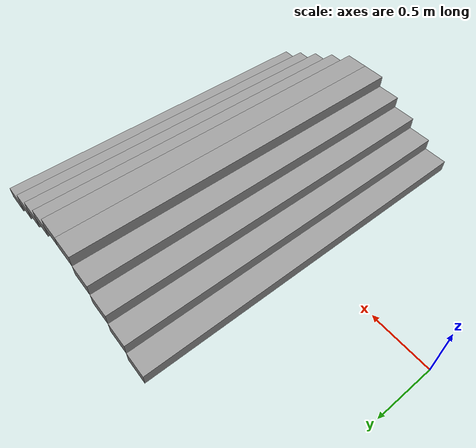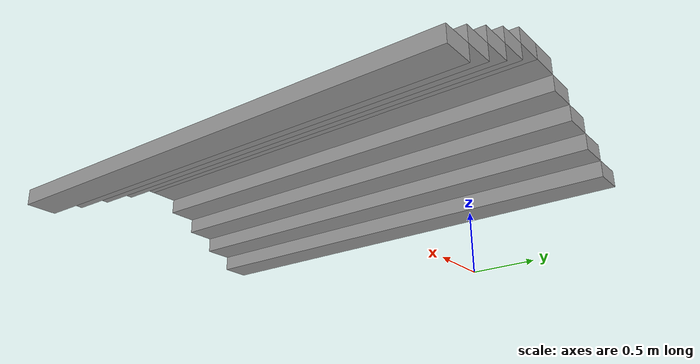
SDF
<?xml version='1.0'?>
<sdf version='1.7'>
  <model name='stairs'>
    <link name='Stairs_2'>
      <self_collide>0</self_collide>
      <enable_wind>0</enable_wind>
      <kinematic>0</kinematic>
      <pose>0 0 0 0 -0 0</pose>
      <visual name='Stairs_2_Visual_3'>
        <pose>1.775 -0 0.35 0 -0 1.5708</pose>
        <geometry>
          <box>
            <size>3 0.2 0.1</size>
          </box>
        </geometry>
        <material>
          <script>
            <uri>file://media/materials/scripts/gazebo.material</uri>
            <name>Gazebo/Grey</name>
          </script>
          <ambient>1 1 1 1</ambient>
          <shader type='pixel'/>
        </material>
        <meta>
          <layer>0</layer>
        </meta>
        <transparency>0</transparency>
        <cast_shadows>1</cast_shadows>
      </visual>
      <visual name='Stairs_2_Visual_0'>
        <pose>1.175 -0 0.05 0 -0 1.5708</pose>
        <geometry>
          <box>
            <size>3 0.2 0.1</size>
          </box>
        </geometry>
        <material>
          <script>
            <uri>file://media/materials/scripts/gazebo.material</uri>
            <name>Gazebo/Grey</name>
          </script>
          <ambient>1 1 1 1</ambient>
          <shader type='pixel'/>
        </material>
        <meta>
          <layer>0</layer>
        </meta>
        <transparency>0</transparency>
        <cast_shadows>1</cast_shadows>
      </visual>
      <visual name='Stairs_2_Visual_4'>
        <pose>1.975 0 0.45 0 -0 1.5708</pose>
        <geometry>
          <box>
            <size>3 0.2 0.1</size>
          </box>
        </geometry>
        <material>
          <script>
            <uri>file://media/materials/scripts/gazebo.material</uri>
            <name>Gazebo/Grey</name>
          </script>
          <ambient>1 1 1 1</ambient>
          <shader type='pixel'/>
        </material>
        <meta>
          <layer>0</layer>
        </meta>
        <transparency>0</transparency>
        <cast_shadows>1</cast_shadows>
      </visual>
      <visual name='Stairs_2_Visual_1'>
        <pose>1.375 -0 0.15 0 -0 1.5708</pose>
        <geometry>
          <box>
            <size>3 0.2 0.1</size>
          </box>
        </geometry>
        <material>
          <script>
            <uri>file://media/materials/scripts/gazebo.material</uri>
            <name>Gazebo/Grey</name>
          </script>
          <ambient>1 1 1 1</ambient>
          <shader type='pixel'/>
        </material>
        <meta>
          <layer>0</layer>
        </meta>
        <transparency>0</transparency>
        <cast_shadows>1</cast_shadows>
      </visual>
      <visual name='Stairs_2_Visual_2'>
        <pose>1.575 -0 0.25 0 -0 1.5708</pose>
        <geometry>
          <box>
            <size>3 0.2 0.1</size>
          </box>
        </geometry>
        <material>
          <script>
            <uri>file://media/materials/scripts/gazebo.material</uri>
            <name>Gazebo/Grey</name>
          </script>
          <ambient>1 1 1 1</ambient>
          <shader type='pixel'/>
        </material>
        <meta>
          <layer>0</layer>
        </meta>
        <transparency>0</transparency>
        <cast_shadows>1</cast_shadows>
      </visual>
      <collision name='Stairs_2_Collision_3'>
        <laser_retro>0</laser_retro>
        <max_contacts>10</max_contacts>
        <pose>1.775 0 0.35 0 -0 1.5708</pose>
        <geometry>
          <box>
            <size>3 0.2 0.1</size>
          </box>
        </geometry>
        <surface>
          <friction>
            <ode>
              <mu>1</mu>
              <mu2>1</mu2>
              <fdir1>0 0 0</fdir1>
              <slip1>0</slip1>
              <slip2>0</slip2>
            </ode>
            <torsional>
              <coefficient>1</coefficient>
              <patch_radius>0</patch_radius>
              <surface_radius>0</surface_radius>
              <use_patch_radius>1</use_patch_radius>
              <ode>
                <slip>0</slip>
              </ode>
            </torsional>
          </friction>
          <bounce>
            <restitution_coefficient>0</restitution_coefficient>
            <threshold>1e+06</threshold>
          </bounce>
          <contact>
            <collide_without_contact>0</collide_without_contact>
            <collide_without_contact_bitmask>1</collide_without_contact_bitmask>
            <collide_bitmask>1</collide_bitmask>
            <ode>
              <soft_cfm>0</soft_cfm>
              <soft_erp>0.2</soft_erp>
              <kp>1e+13</kp>
              <kd>1</kd>
              <max_vel>0.01</max_vel>
              <min_depth>0</min_depth>
            </ode>
            <bullet>
              <split_impulse>1</split_impulse>
              <split_impulse_penetration_threshold>-0.01</split_impulse_penetration_threshold>
              <soft_cfm>0</soft_cfm>
              <soft_erp>0.2</soft_erp>
              <kp>1e+13</kp>
              <kd>1</kd>
            </bullet>
          </contact>
        </surface>
      </collision>
      <collision name='Stairs_2_Collision_2'>
        <laser_retro>0</laser_retro>
        <max_contacts>10</max_contacts>
        <pose>1.575 0 0.25 0 -0 1.5708</pose>
        <geometry>
          <box>
            <size>3 0.2 0.1</size>
          </box>
        </geometry>
        <surface>
          <friction>
            <ode>
              <mu>1</mu>
              <mu2>1</mu2>
              <fdir1>0 0 0</fdir1>
              <slip1>0</slip1>
              <slip2>0</slip2>
            </ode>
            <torsional>
              <coefficient>1</coefficient>
              <patch_radius>0</patch_radius>
              <surface_radius>0</surface_radius>
              <use_patch_radius>1</use_patch_radius>
              <ode>
                <slip>0</slip>
              </ode>
            </torsional>
          </friction>
          <bounce>
            <restitution_coefficient>0</restitution_coefficient>
            <threshold>1e+06</threshold>
          </bounce>
          <contact>
            <collide_without_contact>0</collide_without_contact>
            <collide_without_contact_bitmask>1</collide_without_contact_bitmask>
            <collide_bitmask>1</collide_bitmask>
            <ode>
              <soft_cfm>0</soft_cfm>
              <soft_erp>0.2</soft_erp>
              <kp>1e+13</kp>
              <kd>1</kd>
              <max_vel>0.01</max_vel>
              <min_depth>0</min_depth>
            </ode>
            <bullet>
              <split_impulse>1</split_impulse>
              <split_impulse_penetration_threshold>-0.01</split_impulse_penetration_threshold>
              <soft_cfm>0</soft_cfm>
              <soft_erp>0.2</soft_erp>
              <kp>1e+13</kp>
              <kd>1</kd>
            </bullet>
          </contact>
        </surface>
      </collision>
      <collision name='Stairs_2_Collision_4'>
        <laser_retro>0</laser_retro>
        <max_contacts>10</max_contacts>
        <pose>1.975 0 0.45 0 -0 1.5708</pose>
        <geometry>
          <box>
            <size>3 0.2 0.1</size>
          </box>
        </geometry>
        <surface>
          <friction>
            <ode>
              <mu>1</mu>
              <mu2>1</mu2>
              <fdir1>0 0 0</fdir1>
              <slip1>0</slip1>
              <slip2>0</slip2>
            </ode>
            <torsional>
              <coefficient>1</coefficient>
              <patch_radius>0</patch_radius>
              <surface_radius>0</surface_radius>
              <use_patch_radius>1</use_patch_radius>
              <ode>
                <slip>0</slip>
              </ode>
            </torsional>
          </friction>
          <bounce>
            <restitution_coefficient>0</restitution_coefficient>
            <threshold>1e+06</threshold>
          </bounce>
          <contact>
            <collide_without_contact>0</collide_without_contact>
            <collide_without_contact_bitmask>1</collide_without_contact_bitmask>
            <collide_bitmask>1</collide_bitmask>
            <ode>
              <soft_cfm>0</soft_cfm>
              <soft_erp>0.2</soft_erp>
              <kp>1e+13</kp>
              <kd>1</kd>
              <max_vel>0.01</max_vel>
              <min_depth>0</min_depth>
            </ode>
            <bullet>
              <split_impulse>1</split_impulse>
              <split_impulse_penetration_threshold>-0.01</split_impulse_penetration_threshold>
              <soft_cfm>0</soft_cfm>
              <soft_erp>0.2</soft_erp>
              <kp>1e+13</kp>
              <kd>1</kd>
            </bullet>
          </contact>
        </surface>
      </collision>
      <collision name='Stairs_2_Collision_0'>
        <laser_retro>0</laser_retro>
        <max_contacts>10</max_contacts>
        <pose>1.175 0 0.05 0 -0 1.5708</pose>
        <geometry>
          <box>
            <size>3 0.2 0.1</size>
          </box>
        </geometry>
        <surface>
          <friction>
            <ode>
              <mu>1</mu>
              <mu2>1</mu2>
              <fdir1>0 0 0</fdir1>
              <slip1>0</slip1>
              <slip2>0</slip2>
            </ode>
            <torsional>
              <coefficient>1</coefficient>
              <patch_radius>0</patch_radius>
              <surface_radius>0</surface_radius>
              <use_patch_radius>1</use_patch_radius>
              <ode>
                <slip>0</slip>
              </ode>
            </torsional>
          </friction>
          <bounce>
            <restitution_coefficient>0</restitution_coefficient>
            <threshold>1e+06</threshold>
          </bounce>
          <contact>
            <collide_without_contact>0</collide_without_contact>
            <collide_without_contact_bitmask>1</collide_without_contact_bitmask>
            <collide_bitmask>1</collide_bitmask>
            <ode>
              <soft_cfm>0</soft_cfm>
              <soft_erp>0.2</soft_erp>
              <kp>1e+13</kp>
              <kd>1</kd>
              <max_vel>0.01</max_vel>
              <min_depth>0</min_depth>
            </ode>
            <bullet>
              <split_impulse>1</split_impulse>
              <split_impulse_penetration_threshold>-0.01</split_impulse_penetration_threshold>
              <soft_cfm>0</soft_cfm>
              <soft_erp>0.2</soft_erp>
              <kp>1e+13</kp>
              <kd>1</kd>
            </bullet>
          </contact>
        </surface>
      </collision>
      <collision name='Stairs_2_Collision_1'>
        <laser_retro>0</laser_retro>
        <max_contacts>10</max_contacts>
        <pose>1.375 0 0.15 0 -0 1.5708</pose>
        <geometry>
          <box>
            <size>3 0.2 0.1</size>
          </box>
        </geometry>
        <surface>
          <friction>
            <ode>
              <mu>1</mu>
              <mu2>1</mu2>
              <fdir1>0 0 0</fdir1>
              <slip1>0</slip1>
              <slip2>0</slip2>
            </ode>
            <torsional>
              <coefficient>1</coefficient>
              <patch_radius>0</patch_radius>
              <surface_radius>0</surface_radius>
              <use_patch_radius>1</use_patch_radius>
              <ode>
                <slip>0</slip>
              </ode>
            </torsional>
          </friction>
          <bounce>
            <restitution_coefficient>0</restitution_coefficient>
            <threshold>1e+06</threshold>
          </bounce>
          <contact>
            <collide_without_contact>0</collide_without_contact>
            <collide_without_contact_bitmask>1</collide_without_contact_bitmask>
            <collide_bitmask>1</collide_bitmask>
            <ode>
              <soft_cfm>0</soft_cfm>
              <soft_erp>0.2</soft_erp>
              <kp>1e+13</kp>
              <kd>1</kd>
              <max_vel>0.01</max_vel>
              <min_depth>0</min_depth>
            </ode>
            <bullet>
              <split_impulse>1</split_impulse>
              <split_impulse_penetration_threshold>-0.01</split_impulse_penetration_threshold>
              <soft_cfm>0</soft_cfm>
              <soft_erp>0.2</soft_erp>
              <kp>1e+13</kp>
              <kd>1</kd>
            </bullet>
          </contact>
        </surface>
      </collision>
    </link>
    <model name='stairs'>
      <pose>4.14673 -0.003522 0 0 -0 3.14016</pose>
      <link name='Stairs_2'>
        <visual name='Stairs_2_Visual_0'>
          <pose>1.175 -0 0.05 0 -0 1.5708</pose>
          <geometry>
            <box>
              <size>3 0.2 0.1</size>
            </box>
          </geometry>
          <material>
            <script>
              <uri>file://media/materials/scripts/gazebo.material</uri>
              <name>Gazebo/Grey</name>
            </script>
            <ambient>1 1 1 1</ambient>
          </material>
          <meta>
            <layer>0</layer>
          </meta>
        </visual>
        <collision name='Stairs_2_Collision_0'>
          <geometry>
            <box>
              <size>3 0.2 0.1</size>
            </box>
          </geometry>
          <pose>1.175 -0 0.05 0 -0 1.5708</pose>
        </collision>
        <visual name='Stairs_2_Visual_1'>
          <pose>1.375 -0 0.15 0 -0 1.5708</pose>
          <geometry>
            <box>
              <size>3 0.2 0.1</size>
            </box>
          </geometry>
          <material>
            <script>
              <uri>file://media/materials/scripts/gazebo.material</uri>
              <name>Gazebo/Grey</name>
            </script>
            <ambient>1 1 1 1</ambient>
          </material>
          <meta>
            <layer>0</layer>
          </meta>
        </visual>
        <collision name='Stairs_2_Collision_1'>
          <geometry>
            <box>
              <size>3 0.2 0.1</size>
            </box>
          </geometry>
          <pose>1.375 -0 0.15 0 -0 1.5708</pose>
        </collision>
        <visual name='Stairs_2_Visual_2'>
          <pose>1.575 -0 0.25 0 -0 1.5708</pose>
          <geometry>
            <box>
              <size>3 0.2 0.1</size>
            </box>
          </geometry>
          <material>
            <script>
              <uri>file://media/materials/scripts/gazebo.material</uri>
              <name>Gazebo/Grey</name>
            </script>
            <ambient>1 1 1 1</ambient>
          </material>
          <meta>
            <layer>0</layer>
          </meta>
        </visual>
        <collision name='Stairs_2_Collision_2'>
          <geometry>
            <box>
              <size>3 0.2 0.1</size>
            </box>
          </geometry>
          <pose>1.575 -0 0.25 0 -0 1.5708</pose>
        </collision>
        <visual name='Stairs_2_Visual_3'>
          <pose>1.775 -0 0.35 0 -0 1.5708</pose>
          <geometry>
            <box>
              <size>3 0.2 0.1</size>
            </box>
          </geometry>
          <material>
            <script>
              <uri>file://media/materials/scripts/gazebo.material</uri>
              <name>Gazebo/Grey</name>
            </script>
            <ambient>1 1 1 1</ambient>
          </material>
          <meta>
            <layer>0</layer>
          </meta>
        </visual>
        <collision name='Stairs_2_Collision_3'>
          <geometry>
            <box>
              <size>3 0.2 0.1</size>
            </box>
          </geometry>
          <pose>1.775 -0 0.35 0 -0 1.5708</pose>
        </collision>
        <visual name='Stairs_2_Visual_4'>
          <pose>1.975 0 0.45 0 -0 1.5708</pose>
          <geometry>
            <box>
              <size>3 0.2 0.1</size>
            </box>
          </geometry>
          <material>
            <script>
              <uri>file://media/materials/scripts/gazebo.material</uri>
              <name>Gazebo/Grey</name>
            </script>
            <ambient>1 1 1 1</ambient>
          </material>
          <meta>
            <layer>0</layer>
          </meta>
        </visual>
        <collision name='Stairs_2_Collision_4'>
          <geometry>
            <box>
              <size>3 0.2 0.1</size>
            </box>
          </geometry>
          <pose>1.975 0 0.45 0 -0 1.5708</pose>
        </collision>
      </link>
      <static>1</static>
    </model>
    <static>1</static>
    <allow_auto_disable>1</allow_auto_disable>
  </model>
</sdf>
